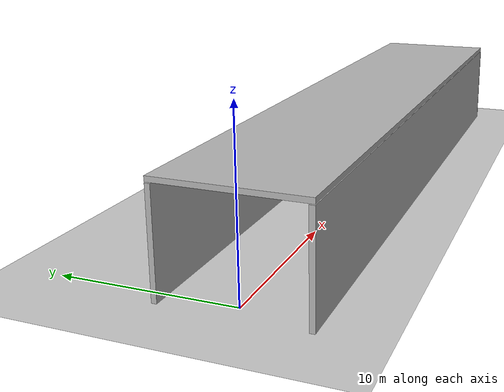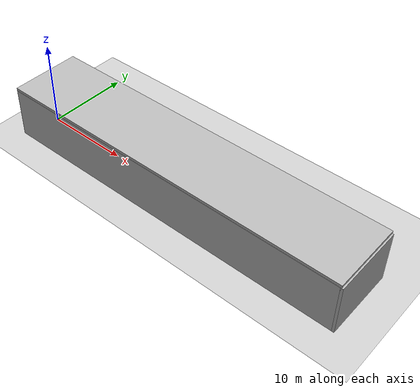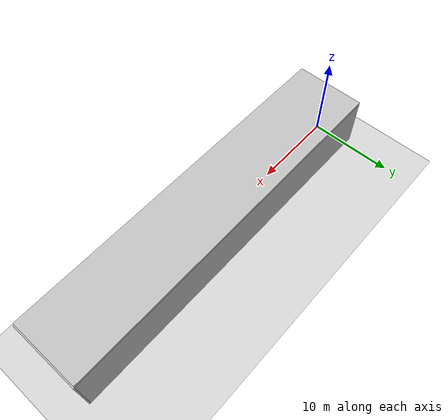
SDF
<sdf version="1.9">
 <world name="tunnel_smooth">
  <physics type="ode">
   <max_step_size>0.004</max_step_size>
   <real_time_factor>0.8</real_time_factor>
   <real_time_update_rate>200</real_time_update_rate>
  </physics>
  <gravity>0 0 -9.8</gravity>
  <scene>
   <grid>true</grid>
   <ambient>0.35 0.35 0.35 1</ambient>
   <background>0.65 0.70 0.78 1</background>
   <shadows>true</shadows>
  </scene>
  <model name="ground_plane">
   <static>true</static>
   <link name="link">
    <collision name="collision">
     <geometry><plane><normal>0 0 1</normal><size>200 200</size></plane></geometry>
    </collision>
    <visual name="visual"><geometry><plane><normal>0 0 1</normal><size>200 200</size></plane></geometry></visual>
   </link>
  </model>
  <model name="tunnel_wall_north">
   <static>true</static>
   <pose>20 4 3 0 0 0</pose>
   <link name="link">
    <collision name="collision"><geometry><box><size>42 0.3 6</size></box></geometry></collision>
    <visual name="visual"><geometry><box><size>42 0.3 6</size></box></geometry></visual>
   </link>
  </model>
  <model name="tunnel_wall_south">
   <static>true</static>
   <pose>20 -4 3 0 0 0</pose>
   <link name="link">
    <collision name="collision"><geometry><box><size>42 0.3 6</size></box></geometry></collision>
    <visual name="visual"><geometry><box><size>42 0.3 6</size></box></geometry></visual>
   </link>
  </model>
  <model name="tunnel_ceiling">
   <static>true</static>
   <pose>20 0 6.2 0 0 0</pose>
   <link name="link">
    <collision name="collision"><geometry><box><size>42 8.3 0.3</size></box></geometry></collision>
    <visual name="visual"><geometry><box><size>42 8.3 0.3</size></box></geometry></visual>
   </link>
  </model>
  <model name="tunnel_end">
   <static>true</static>
   <pose>41 0 3 0 0 0</pose>
   <link name="link">
    <collision name="collision"><geometry><box><size>0.3 8.3 6</size></box></geometry></collision>
    <visual name="visual"><geometry><box><size>0.3 8.3 6</size></box></geometry></visual>
   </link>
  </model>
  <light name="sunUTC" type="directional">
   <pose>0 0 500 0 0 0</pose>
   <intensity>1</intensity>
   <direction>0.001 0.625 -0.78</direction>
  </light>
  <spherical_coordinates>
   <surface_model>EARTH_WGS84</surface_model>
   <world_frame_orientation>ENU</world_frame_orientation>
   <latitude_deg>10.8231</latitude_deg>
   <longitude_deg>106.6297</longitude_deg>
   <elevation>10</elevation>
  </spherical_coordinates>
 </world>
</sdf>
